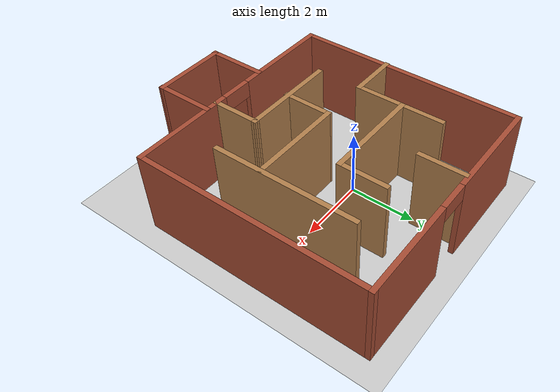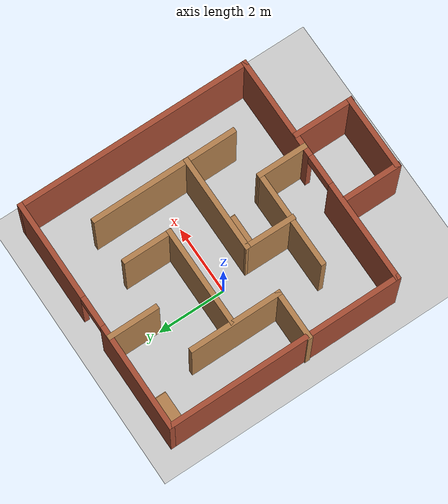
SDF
<sdf version="1.7">
 <world name="default">
  <light name="sun" type="directional">
   <pose>0 0 10 0 -0 0</pose>
   <diffuse>0.8 0.8 0.8 1</diffuse>
   <specular>0.2 0.2 0.2 1</specular>
   <attenuation>
    <range>1000</range>
    <constant>0.9</constant>
    <linear>0.01</linear>
    <quadratic>0.001</quadratic>
   </attenuation>
   <direction>-0.5 0.1 -0.9</direction>
   <spot><inner_angle>0</inner_angle><outer_angle>0</outer_angle><falloff>0</falloff></spot>
  </light>
  <model name="ground_plane">
   <static>1</static>
   <link name="link">
    <collision name="collision">
     <geometry><plane><normal>0 0 1</normal><size>100 100</size></plane></geometry>
     <surface><friction><ode><mu>100</mu><mu2>50</mu2></ode></friction></surface>
    </collision>
    <visual name="visual">
     <cast_shadows>0</cast_shadows>
     <geometry><plane><normal>0 0 1</normal><size>100 100</size></plane></geometry>
     <material>
      <script><uri>file://media/materials/scripts/gazebo.material</uri><name>Gazebo/Grey</name></script>
     </material>
    </visual>
   </link>
  </model>
  <gravity>0 0 -9.8</gravity>
  <magnetic_field>6e-06 2.3e-05 -4.2e-05</magnetic_field>
  <atmosphere type="adiabatic"/>
  <physics type="ode">
   <max_step_size>0.001</max_step_size>
   <real_time_factor>1</real_time_factor>
   <real_time_update_rate>1000</real_time_update_rate>
  </physics>
  <scene><ambient>0.4 0.4 0.4 1</ambient><background>0.7 0.7 0.7 1</background><shadows>1</shadows></scene>
  <audio><device>default</device></audio>
  <spherical_coordinates>
   <surface_model>EARTH_WGS84</surface_model>
   <latitude_deg>0</latitude_deg>
   <longitude_deg>0</longitude_deg>
   <elevation>0</elevation>
   <heading_deg>0</heading_deg>
  </spherical_coordinates>
  <model name="maze">
   <pose>0.743923 -0.894776 0 0 -0 0</pose>
   <link name="Wall_0">
    <collision name="Wall_0_Collision">
     <geometry><box><size>7 0.15 2.5</size></box></geometry>
     <pose>0 0 1.25 0 -0 0</pose>
    </collision>
    <visual name="Wall_0_Visual">
     <pose>0 0 1.25 0 -0 0</pose>
     <geometry><box><size>7 0.15 2.5</size></box></geometry>
     <material>
      <script><uri>file://media/materials/scripts/gazebo.material</uri><name>Gazebo/Bricks</name></script>
      <ambient>1 1 1 1</ambient>
     </material>
     <meta><layer>0</layer></meta>
    </visual>
    <pose>-3.40979 0.847721 0 0 -0 -1.5708</pose>
   </link>
   <link name="Wall_1">
    <pose>0.015208 -2.57728 0 0 -0 0</pose>
    <visual name="Wall_1_Visual_0">
     <pose>-1.98478 0 1.25 0 -0 0</pose>
     <geometry><box><size>3.03043 0.15 2.5</size></box></geometry>
     <material>
      <script><uri>file://media/materials/scripts/gazebo.material</uri><name>Gazebo/Bricks</name></script>
      <ambient>1 1 1 1</ambient>
     </material>
     <meta><layer>0</layer></meta>
    </visual>
    <collision name="Wall_1_Collision_0">
     <geometry><box><size>3.03043 0.15 2.5</size></box></geometry>
     <pose>-1.98478 0 1.25 0 -0 0</pose>
    </collision>
    <visual name="Wall_1_Visual_1">
     <pose>1.96522 0 1.25 0 -0 0</pose>
     <geometry><box><size>3.06957 0.15 2.5</size></box></geometry>
     <material>
      <script><uri>file://media/materials/scripts/gazebo.material</uri><name>Gazebo/Bricks</name></script>
      <ambient>1 1 1 1</ambient>
     </material>
     <meta><layer>0</layer></meta>
    </visual>
    <collision name="Wall_1_Collision_1">
     <geometry><box><size>3.06957 0.15 2.5</size></box></geometry>
     <pose>1.96522 0 1.25 0 -0 0</pose>
    </collision>
    <visual name="Wall_1_Visual_2">
     <pose>-0.019566 0 2.25 0 -0 0</pose>
     <geometry><box><size>0.9 0.15 0.5</size></box></geometry>
     <material>
      <script><uri>file://media/materials/scripts/gazebo.material</uri><name>Gazebo/Bricks</name></script>
      <ambient>1 1 1 1</ambient>
     </material>
     <meta><layer>0</layer></meta>
    </visual>
    <collision name="Wall_1_Collision_2">
     <geometry><box><size>0.9 0.15 0.5</size></box></geometry>
     <pose>-0.019566 0 2.25 0 -0 0</pose>
    </collision>
   </link>
   <link name="Wall_12">
    <collision name="Wall_12_Collision">
     <geometry><box><size>1.5 0.15 2.5</size></box></geometry>
     <pose>0 0 1.25 0 -0 0</pose>
    </collision>
    <visual name="Wall_12_Visual">
     <pose>0 0 1.25 0 -0 0</pose>
     <geometry><box><size>1.5 0.15 2.5</size></box></geometry>
     <material>
      <script><uri>file://media/materials/scripts/gazebo.material</uri><name>Gazebo/Wood</name></script>
      <ambient>1 1 1 1</ambient>
     </material>
     <meta><layer>0</layer></meta>
    </visual>
    <pose>-0.676421 3.58967 0 0 -0 -1.5708</pose>
   </link>
   <link name="Wall_14">
    <collision name="Wall_14_Collision">
     <geometry><box><size>1.5 0.15 2.5</size></box></geometry>
     <pose>0 0 1.25 0 -0 0</pose>
    </collision>
    <visual name="Wall_14_Visual">
     <pose>0 0 1.25 0 -0 0</pose>
     <geometry><box><size>1.5 0.15 2.5</size></box></geometry>
     <material>
      <script><uri>file://media/materials/scripts/gazebo.material</uri><name>Gazebo/Wood</name></script>
      <ambient>1 1 1 1</ambient>
     </material>
     <meta><layer>0</layer></meta>
    </visual>
    <pose>0.740274 -1.89894 0 0 -0 1.5708</pose>
   </link>
   <link name="Wall_15">
    <collision name="Wall_15_Collision">
     <geometry><box><size>2.93092 0.15 2.5</size></box></geometry>
     <pose>0 0 1.25 0 -0 0</pose>
    </collision>
    <visual name="Wall_15_Visual">
     <pose>0 0 1.25 0 -0 0</pose>
     <geometry><box><size>2.93092 0.15 2.5</size></box></geometry>
     <material>
      <script><uri>file://media/materials/scripts/gazebo.material</uri><name>Gazebo/Wood</name></script>
      <ambient>1 1 1 1</ambient>
     </material>
     <meta><layer>0</layer></meta>
    </visual>
    <pose>-0.650186 -1.22557 0 0 -0 -3.14042</pose>
   </link>
   <link name="Wall_17">
    <collision name="Wall_17_Collision">
     <geometry><box><size>1.52546 0.15 2.5</size></box></geometry>
     <pose>0 0 1.25 0 -0 0</pose>
    </collision>
    <visual name="Wall_17_Visual">
     <pose>0 0 1.25 0 -0 0</pose>
     <geometry><box><size>1.52546 0.15 2.5</size></box></geometry>
     <material>
      <script><uri>file://media/materials/scripts/gazebo.material</uri><name>Gazebo/Wood</name></script>
      <ambient>1 1 1 1</ambient>
     </material>
     <meta><layer>0</layer></meta>
    </visual>
    <pose>-0.64577 -0.569597 0 0 -0 1.56118</pose>
   </link>
   <link name="Wall_18">
    <collision name="Wall_18_Collision">
     <geometry><box><size>2.87435 0.15 2.5</size></box></geometry>
     <pose>0 0 1.25 0 -0 0</pose>
    </collision>
    <visual name="Wall_18_Visual">
     <pose>0 0 1.25 0 -0 0</pose>
     <geometry><box><size>2.87435 0.15 2.5</size></box></geometry>
     <material>
      <script><uri>file://media/materials/scripts/gazebo.material</uri><name>Gazebo/Wood</name></script>
      <ambient>1 1 1 1</ambient>
     </material>
     <meta><layer>0</layer></meta>
    </visual>
    <pose>0.723017 0.118103 0 0 -0 0</pose>
   </link>
   <link name="Wall_2">
    <collision name="Wall_2_Collision">
     <geometry><box><size>7 0.15 2.5</size></box></geometry>
     <pose>0 0 1.25 0 -0 0</pose>
    </collision>
    <visual name="Wall_2_Visual">
     <pose>0 0 1.25 0 -0 0</pose>
     <geometry><box><size>7 0.15 2.5</size></box></geometry>
     <material>
      <script><uri>file://media/materials/scripts/gazebo.material</uri><name>Gazebo/Bricks</name></script>
      <ambient>1 1 1 1</ambient>
     </material>
     <meta><layer>0</layer></meta>
    </visual>
    <pose>3.44021 0.847721 0 0 -0 1.5708</pose>
   </link>
   <link name="Wall_20">
    <collision name="Wall_20_Collision">
     <geometry><box><size>4.3688 0.15 2.5</size></box></geometry>
     <pose>0 0 1.25 0 -0 0</pose>
    </collision>
    <visual name="Wall_20_Visual">
     <pose>0 0 1.25 0 -0 0</pose>
     <geometry><box><size>4.3688 0.15 2.5</size></box></geometry>
     <material>
      <script><uri>file://media/materials/scripts/gazebo.material</uri><name>Gazebo/Wood</name></script>
      <ambient>1 1 1 1</ambient>
     </material>
     <meta><layer>0</layer></meta>
    </visual>
    <pose>2.0918 0.812416 0 0 -0 -1.56766</pose>
   </link>
   <link name="Wall_22">
    <collision name="Wall_22_Collision">
     <geometry><box><size>1.82793 0.15 2.5</size></box></geometry>
     <pose>0 0 1.25 0 -0 0</pose>
    </collision>
    <visual name="Wall_22_Visual">
     <pose>0 0 1.25 0 -0 0</pose>
     <geometry><box><size>1.82793 0.15 2.5</size></box></geometry>
     <material>
      <script><uri>file://media/materials/scripts/gazebo.material</uri><name>Gazebo/Bricks</name></script>
      <ambient>1 1 1 1</ambient>
     </material>
     <meta><layer>0</layer></meta>
    </visual>
    <pose>-0.988717 -3.43376 0 0 -0 -1.5708</pose>
   </link>
   <link name="Wall_23">
    <collision name="Wall_23_Collision">
     <geometry><box><size>2.25 0.15 2.5</size></box></geometry>
     <pose>0 0 1.25 0 -0 0</pose>
    </collision>
    <visual name="Wall_23_Visual">
     <pose>0 0 1.25 0 -0 0</pose>
     <geometry><box><size>2.25 0.15 2.5</size></box></geometry>
     <material>
      <script><uri>file://media/materials/scripts/gazebo.material</uri><name>Gazebo/Bricks</name></script>
      <ambient>1 1 1 1</ambient>
     </material>
     <meta><layer>0</layer></meta>
    </visual>
    <pose>0.061283 -4.25751 0 0 -0 0</pose>
   </link>
   <link name="Wall_24">
    <collision name="Wall_24_Collision">
     <geometry><box><size>1.82793 0.15 2.5</size></box></geometry>
     <pose>0 0 1.25 0 -0 0</pose>
    </collision>
    <visual name="Wall_24_Visual">
     <pose>0 0 1.25 0 -0 0</pose>
     <geometry><box><size>1.82793 0.15 2.5</size></box></geometry>
     <material>
      <script><uri>file://media/materials/scripts/gazebo.material</uri><name>Gazebo/Bricks</name></script>
      <ambient>1 1 1 1</ambient>
     </material>
     <meta><layer>0</layer></meta>
    </visual>
    <pose>1.11128 -3.43376 0 0 -0 1.5708</pose>
   </link>
   <link name="Wall_3">
    <pose>0.015208 4.27272 0 0 -0 3.14159</pose>
    <visual name="Wall_3_Visual_0">
     <pose>-2.02473 0 1.25 0 -0 0</pose>
     <geometry><box><size>2.95054 0.15 2.5</size></box></geometry>
     <material>
      <script><uri>file://media/materials/scripts/gazebo.material</uri><name>Gazebo/Bricks</name></script>
      <ambient>1 1 1 1</ambient>
     </material>
     <meta><layer>0</layer></meta>
    </visual>
    <collision name="Wall_3_Collision_0">
     <geometry><box><size>2.95054 0.15 2.5</size></box></geometry>
     <pose>-2.02473 0 1.25 0 -0 0</pose>
    </collision>
    <visual name="Wall_3_Visual_1">
     <pose>1.92527 0 1.25 0 -0 0</pose>
     <geometry><box><size>3.14946 0.15 2.5</size></box></geometry>
     <material>
      <script><uri>file://media/materials/scripts/gazebo.material</uri><name>Gazebo/Bricks</name></script>
      <ambient>1 1 1 1</ambient>
     </material>
     <meta><layer>0</layer></meta>
    </visual>
    <collision name="Wall_3_Collision_1">
     <geometry><box><size>3.14946 0.15 2.5</size></box></geometry>
     <pose>1.92527 0 1.25 0 -0 0</pose>
    </collision>
    <visual name="Wall_3_Visual_2">
     <pose>-0.099459 0 2.25 0 -0 0</pose>
     <geometry><box><size>0.9 0.15 0.5</size></box></geometry>
     <material>
      <script><uri>file://media/materials/scripts/gazebo.material</uri><name>Gazebo/Bricks</name></script>
      <ambient>1 1 1 1</ambient>
     </material>
     <meta><layer>0</layer></meta>
    </visual>
    <collision name="Wall_3_Collision_2">
     <geometry><box><size>0.9 0.15 0.5</size></box></geometry>
     <pose>-0.099459 0 2.25 0 -0 0</pose>
    </collision>
   </link>
   <link name="Wall_5">
    <collision name="Wall_5_Collision">
     <geometry><box><size>1.5 0.15 2.5</size></box></geometry>
     <pose>0 0 1.25 0 -0 0</pose>
    </collision>
    <visual name="Wall_5_Visual">
     <pose>0 0 1.25 0 -0 0</pose>
     <geometry><box><size>1.5 0.15 2.5</size></box></geometry>
     <material>
      <script><uri>file://media/materials/scripts/gazebo.material</uri><name>Gazebo/Wood</name></script>
      <ambient>1 1 1 1</ambient>
     </material>
     <meta><layer>0</layer></meta>
    </visual>
    <pose>-2.76521 0.135941 0 0 -0 0</pose>
   </link>
   <link name="Wall_6">
    <collision name="Wall_6_Collision">
     <geometry><box><size>2.75 0.15 2.5</size></box></geometry>
     <pose>0 0 1.25 0 -0 0</pose>
    </collision>
    <visual name="Wall_6_Visual">
     <pose>0 0 1.25 0 -0 0</pose>
     <geometry><box><size>2.75 0.15 2.5</size></box></geometry>
     <material>
      <script><uri>file://media/materials/scripts/gazebo.material</uri><name>Gazebo/Wood</name></script>
      <ambient>1 1 1 1</ambient>
     </material>
     <meta><layer>0</layer></meta>
    </visual>
    <pose>-2.09021 1.43594 0 0 -0 1.5708</pose>
   </link>
   <link name="Wall_8">
    <collision name="Wall_8_Collision">
     <geometry><box><size>3 0.15 2.5</size></box></geometry>
     <pose>0 0 1.25 0 -0 0</pose>
    </collision>
    <visual name="Wall_8_Visual">
     <pose>0 0 1.25 0 -0 0</pose>
     <geometry><box><size>3 0.15 2.5</size></box></geometry>
     <material>
      <script><uri>file://media/materials/scripts/gazebo.material</uri><name>Gazebo/Wood</name></script>
      <ambient>1 1 1 1</ambient>
     </material>
     <meta><layer>0</layer></meta>
    </visual>
    <pose>-0.66163 1.51994 0 0 -0 0</pose>
   </link>
   <link name="Wall_9">
    <collision name="Wall_9_Collision">
     <geometry><box><size>1.5 0.15 2.5</size></box></geometry>
     <pose>0 0 1.25 0 -0 0</pose>
    </collision>
    <visual name="Wall_9_Visual">
     <pose>0 0 1.25 0 -0 0</pose>
     <geometry><box><size>1.5 0.15 2.5</size></box></geometry>
     <material>
      <script><uri>file://media/materials/scripts/gazebo.material</uri><name>Gazebo/Wood</name></script>
      <ambient>1 1 1 1</ambient>
     </material>
     <meta><layer>0</layer></meta>
    </visual>
    <pose>0.76337 2.19494 0 0 -0 1.5708</pose>
   </link>
   <static>1</static>
  </model>
  <model name="bookshelf">
   <static>1</static>
   <link name="link">
    <inertial><mass>1</mass></inertial>
    <collision name="back">
     <pose>0 0.005 0.6 0 -0 0</pose>
     <geometry><box><size>0.9 0.01 1.2</size></box></geometry>
    </collision>
    <visual name="visual1">
     <pose>0 0.005 0.6 0 -0 0</pose>
     <geometry><box><size>0.9 0.01 1.2</size></box></geometry>
     <material>
      <script><uri>file://media/materials/scripts/gazebo.material</uri><name>Gazebo/Wood</name></script>
     </material>
    </visual>
    <collision name="left_side">
     <pose>0.45 -0.195 0.6 0 -0 0</pose>
     <geometry><box><size>0.02 0.4 1.2</size></box></geometry>
    </collision>
    <visual name="visual2">
     <pose>0.45 -0.195 0.6 0 -0 0</pose>
     <geometry><box><size>0.02 0.4 1.2</size></box></geometry>
     <material>
      <script><uri>file://media/materials/scripts/gazebo.material</uri><name>Gazebo/Wood</name></script>
     </material>
    </visual>
    <collision name="right_side">
     <pose>-0.45 -0.195 0.6 0 -0 0</pose>
     <geometry><box><size>0.02 0.4 1.2</size></box></geometry>
    </collision>
    <visual name="visual3">
     <pose>-0.45 -0.195 0.6 0 -0 0</pose>
     <geometry><box><size>0.02 0.4 1.2</size></box></geometry>
     <material>
      <script><uri>file://media/materials/scripts/gazebo.material</uri><name>Gazebo/Wood</name></script>
     </material>
    </visual>
    <collision name="bottom">
     <pose>0 -0.195 0.03 0 -0 0</pose>
     <geometry><box><size>0.88 0.4 0.06</size></box></geometry>
    </collision>
    <visual name="visual4">
     <pose>0 -0.195 0.03 0 -0 0</pose>
     <geometry><box><size>0.88 0.4 0.06</size></box></geometry>
     <material>
      <script><uri>file://media/materials/scripts/gazebo.material</uri><name>Gazebo/Wood</name></script>
     </material>
    </visual>
    <collision name="top">
     <pose>0 -0.195 1.19 0 -0 0</pose>
     <geometry><box><size>0.88 0.4 0.02</size></box></geometry>
    </collision>
    <visual name="visual5">
     <pose>0 -0.195 1.19 0 -0 0</pose>
     <geometry><box><size>0.88 0.4 0.02</size></box></geometry>
     <material>
      <script><uri>file://media/materials/scripts/gazebo.material</uri><name>Gazebo/Wood</name></script>
     </material>
    </visual>
    <collision name="low_shelf">
     <pose>0 -0.195 0.43 0 -0 0</pose>
     <geometry><box><size>0.88 0.4 0.02</size></box></geometry>
    </collision>
    <visual name="visual6">
     <pose>0 -0.195 0.43 0 -0 0</pose>
     <geometry><box><size>0.88 0.4 0.02</size></box></geometry>
     <material>
      <script><uri>file://media/materials/scripts/gazebo.material</uri><name>Gazebo/Wood</name></script>
     </material>
    </visual>
    <collision name="high_shelf">
     <pose>0 -0.195 0.8 0 -0 0</pose>
     <geometry><box><size>0.88 0.4 0.02</size></box></geometry>
    </collision>
    <visual name="visual7">
     <pose>0 -0.195 0.8 0 -0 0</pose>
     <geometry><box><size>0.88 0.4 0.02</size></box></geometry>
     <material>
      <script><uri>file://media/materials/scripts/gazebo.material</uri><name>Gazebo/Wood</name></script>
     </material>
    </visual>
   </link>
   <pose>0.825169 -0.816203 0 0 -0 0</pose>
  </model>
  <model name="bookshelf_0">
   <static>1</static>
   <link name="link">
    <inertial><mass>1</mass></inertial>
    <collision name="back">
     <pose>0 0.005 0.6 0 -0 0</pose>
     <geometry><box><size>0.9 0.01 1.2</size></box></geometry>
    </collision>
    <visual name="visual1">
     <pose>0 0.005 0.6 0 -0 0</pose>
     <geometry><box><size>0.9 0.01 1.2</size></box></geometry>
     <material>
      <script><uri>file://media/materials/scripts/gazebo.material</uri><name>Gazebo/Wood</name></script>
     </material>
    </visual>
    <collision name="left_side">
     <pose>0.45 -0.195 0.6 0 -0 0</pose>
     <geometry><box><size>0.02 0.4 1.2</size></box></geometry>
    </collision>
    <visual name="visual2">
     <pose>0.45 -0.195 0.6 0 -0 0</pose>
     <geometry><box><size>0.02 0.4 1.2</size></box></geometry>
     <material>
      <script><uri>file://media/materials/scripts/gazebo.material</uri><name>Gazebo/Wood</name></script>
     </material>
    </visual>
    <collision name="right_side">
     <pose>-0.45 -0.195 0.6 0 -0 0</pose>
     <geometry><box><size>0.02 0.4 1.2</size></box></geometry>
    </collision>
    <visual name="visual3">
     <pose>-0.45 -0.195 0.6 0 -0 0</pose>
     <geometry><box><size>0.02 0.4 1.2</size></box></geometry>
     <material>
      <script><uri>file://media/materials/scripts/gazebo.material</uri><name>Gazebo/Wood</name></script>
     </material>
    </visual>
    <collision name="bottom">
     <pose>0 -0.195 0.03 0 -0 0</pose>
     <geometry><box><size>0.88 0.4 0.06</size></box></geometry>
    </collision>
    <visual name="visual4">
     <pose>0 -0.195 0.03 0 -0 0</pose>
     <geometry><box><size>0.88 0.4 0.06</size></box></geometry>
     <material>
      <script><uri>file://media/materials/scripts/gazebo.material</uri><name>Gazebo/Wood</name></script>
     </material>
    </visual>
    <collision name="top">
     <pose>0 -0.195 1.19 0 -0 0</pose>
     <geometry><box><size>0.88 0.4 0.02</size></box></geometry>
    </collision>
    <visual name="visual5">
     <pose>0 -0.195 1.19 0 -0 0</pose>
     <geometry><box><size>0.88 0.4 0.02</size></box></geometry>
     <material>
      <script><uri>file://media/materials/scripts/gazebo.material</uri><name>Gazebo/Wood</name></script>
     </material>
    </visual>
    <collision name="low_shelf">
     <pose>0 -0.195 0.43 0 -0 0</pose>
     <geometry><box><size>0.88 0.4 0.02</size></box></geometry>
    </collision>
    <visual name="visual6">
     <pose>0 -0.195 0.43 0 -0 0</pose>
     <geometry><box><size>0.88 0.4 0.02</size></box></geometry>
     <material>
      <script><uri>file://media/materials/scripts/gazebo.material</uri><name>Gazebo/Wood</name></script>
     </material>
    </visual>
    <collision name="high_shelf">
     <pose>0 -0.195 0.8 0 -0 0</pose>
     <geometry><box><size>0.88 0.4 0.02</size></box></geometry>
    </collision>
    <visual name="visual7">
     <pose>0 -0.195 0.8 0 -0 0</pose>
     <geometry><box><size>0.88 0.4 0.02</size></box></geometry>
     <material>
      <script><uri>file://media/materials/scripts/gazebo.material</uri><name>Gazebo/Wood</name></script>
     </material>
    </visual>
   </link>
   <pose>-2.07491 3.2589 0 0 -0 0</pose>
  </model>
 </world>
</sdf>
